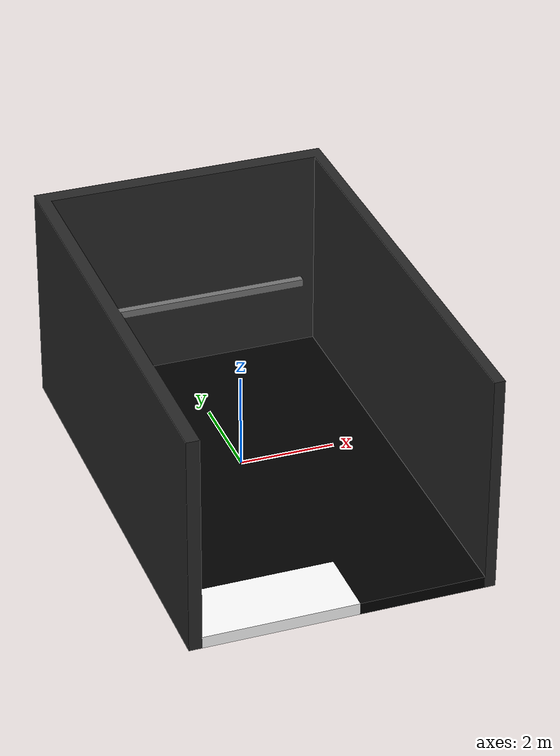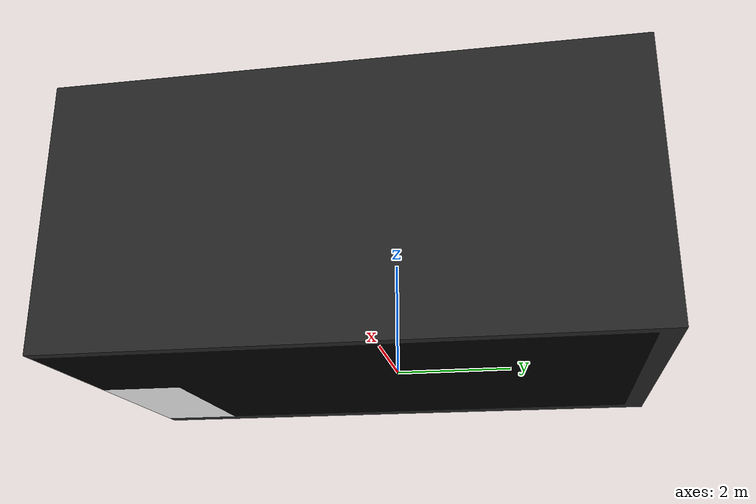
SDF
<?xml version="1.0" ?>
<sdf version="1.5">
  <model name="blackroom">
    <static>true</static>
    <link name="link">
      <!-- Blackroom centered such that to match origin of virtual world is
      aligned with the origin in the Vicon frame -->
      <pose>0.21 -0.475 -0.24 0 0 0</pose>

      <!-- Visual properties of the simplified ARCL spaceroom using a mesh -->
      <visual name="visual">
        <geometry>
          <mesh>
            <uri>model://blackroom/mesh/blackroom_v2.dae</uri>
          </mesh>
        </geometry>
      </visual>

      <collision name="main_floor_collision">
        <pose>0 -0.225 0.125 0 0 0</pose>
        <geometry>
          <box>
            <size>5.76 9.50 0.25</size>
          </box>
        </geometry>
        <surface>
          <friction>
            <ode>
              <mu>0.0001</mu>
              <mu2>0.0001</mu2>
            </ode>
      	    <torsional>
      	      <coefficient>0.0</coefficient>
      	    </torsional>
          </friction>
          <contact>
            <ode>
              <min_depth>0.1</min_depth>
            </ode>
          </contact>
        </surface>
      </collision>

      <collision name='sticky_mat_collision'>
        <pose>-1.29 -4.15 0.125 0 0 0</pose>
        <geometry>
          <box>
            <size>3.18 1.45 0.25</size>
          </box>
        </geometry>
        <surface>
          <friction>
            <ode>
              <mu>1000.0</mu>
              <mu2>1000.0</mu2>
            </ode>
          </friction>
        </surface>
      </collision>

      <collision name='left_wall'>
        <pose>-2.975 0 2.46 0 0 0</pose>
        <geometry>
          <box>
            <size>0.25 9.5 4.42</size>
          </box>
        </geometry>
        <surface>
          <friction>
            <ode>
              <mu>0</mu>
              <mu2>0</mu2>
            </ode>
          </friction>
        </surface>
      </collision>

      <collision name='back_wall'>
        <pose>0 4.75 2.46 0 0 0</pose>
        <geometry>
          <box>
            <size>5.76 0.25 4.42</size>
          </box>
        </geometry>
        <surface>
          <friction>
            <ode>
              <mu>0</mu>
              <mu2>0</mu2>
            </ode>
          </friction>
        </surface>
      </collision>

      <collision name='right_wall'>
        <pose>3.005 0 2.46 0 0 0</pose>
        <geometry>
          <box>
            <size>0.25 9.5 4.42</size>
          </box>
        </geometry>
        <surface>
          <friction>
            <ode>
              <mu>0</mu>
              <mu2>0</mu2>
            </ode>
          </friction>
        </surface>
      </collision>

    </link>
  </model>
</sdf>
